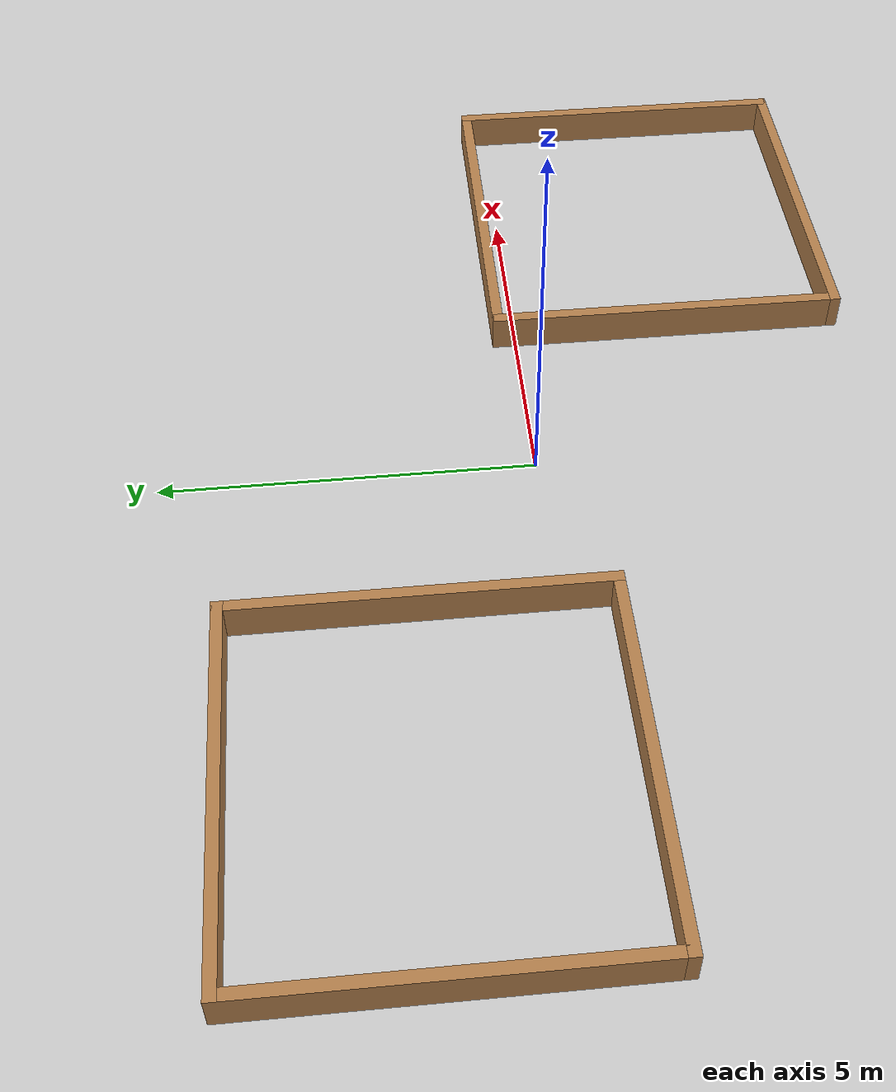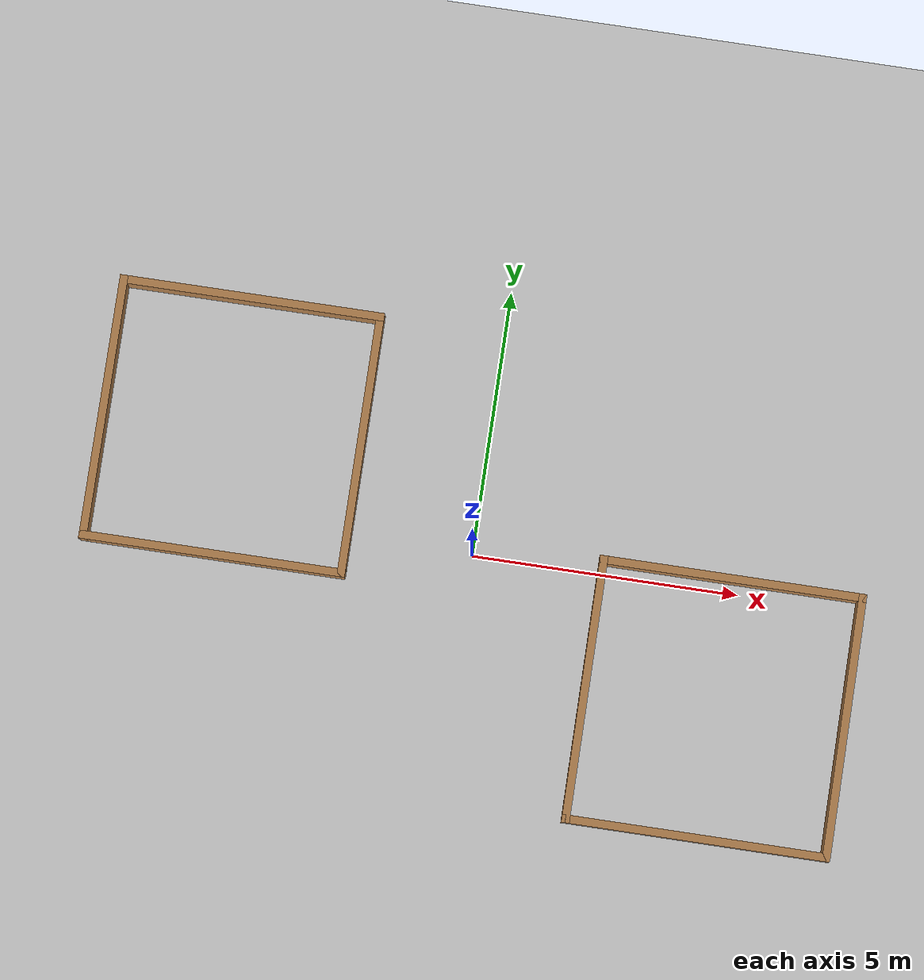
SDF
<sdf version="1.7">
 <world name="default">
  <light name="sun" type="directional">
   <pose>0 0 10 0 -0 0</pose>
   <diffuse>0.8 0.8 0.8 1</diffuse>
   <specular>0.2 0.2 0.2 1</specular>
   <attenuation>
    <range>1000</range>
    <constant>0.9</constant>
    <linear>0.01</linear>
    <quadratic>0.001</quadratic>
   </attenuation>
   <direction>-0.5 0.1 -0.9</direction>
   <spot><inner_angle>0</inner_angle><outer_angle>0</outer_angle><falloff>0</falloff></spot>
  </light>
  <model name="ground_plane">
   <static>1</static>
   <link name="link">
    <collision name="collision">
     <geometry><plane><normal>0 0 1</normal><size>100 100</size></plane></geometry>
     <surface>
      <contact><collide_bitmask>65535</collide_bitmask></contact>
      <friction><ode><mu>100</mu><mu2>50</mu2></ode></friction>
     </surface>
    </collision>
    <visual name="visual">
     <cast_shadows>0</cast_shadows>
     <geometry><plane><normal>0 0 1</normal><size>100 100</size></plane></geometry>
     <material>
      <script><uri>file://media/materials/scripts/gazebo.material</uri><name>Gazebo/Grey</name></script>
     </material>
    </visual>
   </link>
  </model>
  <gravity>0 0 -9.8</gravity>
  <magnetic_field>6e-06 2.3e-05 -4.2e-05</magnetic_field>
  <atmosphere type="adiabatic"/>
  <physics type="ode">
   <max_step_size>0.001</max_step_size>
   <real_time_factor>1</real_time_factor>
   <real_time_update_rate>1000</real_time_update_rate>
  </physics>
  <scene><ambient>0.4 0.4 0.4 1</ambient><background>0.7 0.7 0.7 1</background><shadows>1</shadows></scene>
  <audio><device>default</device></audio>
  <spherical_coordinates>
   <surface_model>EARTH_WGS84</surface_model>
   <latitude_deg>0</latitude_deg>
   <longitude_deg>0</longitude_deg>
   <elevation>0</elevation>
   <heading_deg>0</heading_deg>
  </spherical_coordinates>
  <model name="turtlebot3_square">
   <pose>-4.78001 1.71637 0 0 -0 0</pose>
   <link name="Wall_1">
    <collision name="Wall_1_Collision">
     <geometry><box><size>5 0.15 0.5</size></box></geometry>
     <pose>0 0 0.25 0 -0 0</pose>
    </collision>
    <visual name="Wall_1_Visual">
     <pose>0 0 0.25 0 -0 0</pose>
     <geometry><box><size>5 0.15 0.5</size></box></geometry>
     <material>
      <script><uri>file://media/materials/scripts/gazebo.material</uri><name>Gazebo/Wood</name></script>
      <ambient>1 1 1 1</ambient>
     </material>
    </visual>
    <pose>-2.425 0 0 0 -0 1.5708</pose>
   </link>
   <link name="Wall_2">
    <collision name="Wall_2_Collision">
     <geometry><box><size>5 0.15 0.5</size></box></geometry>
     <pose>0 0 0.25 0 -0 0</pose>
    </collision>
    <visual name="Wall_2_Visual">
     <pose>0 0 0.25 0 -0 0</pose>
     <geometry><box><size>5 0.15 0.5</size></box></geometry>
     <material>
      <script><uri>file://media/materials/scripts/gazebo.material</uri><name>Gazebo/Wood</name></script>
      <ambient>1 1 1 1</ambient>
     </material>
    </visual>
    <pose>0 2.425 0 0 -0 0</pose>
   </link>
   <link name="Wall_3">
    <collision name="Wall_3_Collision">
     <geometry><box><size>5 0.15 0.5</size></box></geometry>
     <pose>0 0 0.25 0 -0 0</pose>
    </collision>
    <visual name="Wall_3_Visual">
     <pose>0 0 0.25 0 -0 0</pose>
     <geometry><box><size>5 0.15 0.5</size></box></geometry>
     <material>
      <script><uri>file://media/materials/scripts/gazebo.material</uri><name>Gazebo/Wood</name></script>
      <ambient>1 1 1 1</ambient>
     </material>
    </visual>
    <pose>2.425 0 0 0 0 -1.5708</pose>
   </link>
   <link name="Wall_4">
    <collision name="Wall_4_Collision">
     <geometry><box><size>5 0.15 0.5</size></box></geometry>
     <pose>0 0 0.25 0 -0 0</pose>
    </collision>
    <visual name="Wall_4_Visual">
     <pose>0 0 0.25 0 -0 0</pose>
     <geometry><box><size>5 0.15 0.5</size></box></geometry>
     <material>
      <script><uri>file://media/materials/scripts/gazebo.material</uri><name>Gazebo/Wood</name></script>
      <ambient>1 1 1 1</ambient>
     </material>
    </visual>
    <pose>0 -2.425 0 0 -0 3.14159</pose>
   </link>
   <static>1</static>
  </model>
  <model name="turtlebot3_square_0">
   <pose>4.85375 -2.1656 0 0 -0 0</pose>
   <link name="Wall_1">
    <collision name="Wall_1_Collision">
     <geometry><box><size>5 0.15 0.5</size></box></geometry>
     <pose>0 0 0.25 0 -0 0</pose>
    </collision>
    <visual name="Wall_1_Visual">
     <pose>0 0 0.25 0 -0 0</pose>
     <geometry><box><size>5 0.15 0.5</size></box></geometry>
     <material>
      <script><uri>file://media/materials/scripts/gazebo.material</uri><name>Gazebo/Wood</name></script>
      <ambient>1 1 1 1</ambient>
     </material>
    </visual>
    <pose>-2.425 0 0 0 -0 1.5708</pose>
   </link>
   <link name="Wall_2">
    <collision name="Wall_2_Collision">
     <geometry><box><size>5 0.15 0.5</size></box></geometry>
     <pose>0 0 0.25 0 -0 0</pose>
    </collision>
    <visual name="Wall_2_Visual">
     <pose>0 0 0.25 0 -0 0</pose>
     <geometry><box><size>5 0.15 0.5</size></box></geometry>
     <material>
      <script><uri>file://media/materials/scripts/gazebo.material</uri><name>Gazebo/Wood</name></script>
      <ambient>1 1 1 1</ambient>
     </material>
    </visual>
    <pose>0 2.425 0 0 -0 0</pose>
   </link>
   <link name="Wall_3">
    <collision name="Wall_3_Collision">
     <geometry><box><size>5 0.15 0.5</size></box></geometry>
     <pose>0 0 0.25 0 -0 0</pose>
    </collision>
    <visual name="Wall_3_Visual">
     <pose>0 0 0.25 0 -0 0</pose>
     <geometry><box><size>5 0.15 0.5</size></box></geometry>
     <material>
      <script><uri>file://media/materials/scripts/gazebo.material</uri><name>Gazebo/Wood</name></script>
      <ambient>1 1 1 1</ambient>
     </material>
    </visual>
    <pose>2.425 0 0 0 0 -1.5708</pose>
   </link>
   <link name="Wall_4">
    <collision name="Wall_4_Collision">
     <geometry><box><size>5 0.15 0.5</size></box></geometry>
     <pose>0 0 0.25 0 -0 0</pose>
    </collision>
    <visual name="Wall_4_Visual">
     <pose>0 0 0.25 0 -0 0</pose>
     <geometry><box><size>5 0.15 0.5</size></box></geometry>
     <material>
      <script><uri>file://media/materials/scripts/gazebo.material</uri><name>Gazebo/Wood</name></script>
      <ambient>1 1 1 1</ambient>
     </material>
    </visual>
    <pose>0 -2.425 0 0 -0 3.14159</pose>
   </link>
   <static>1</static>
  </model>
 </world>
</sdf>
